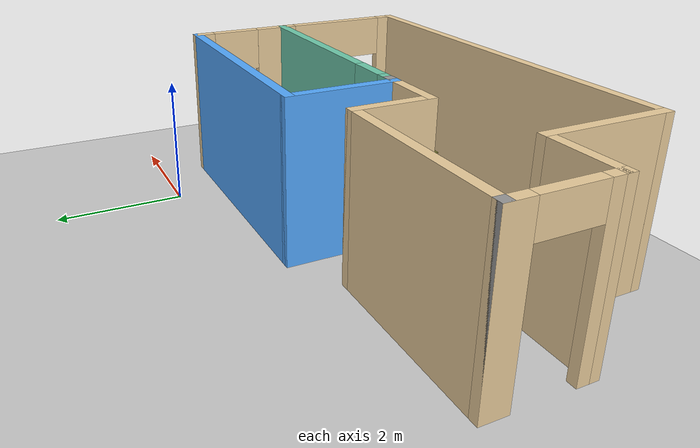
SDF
<sdf version="1.6">
 <world name="default">
  <model name="ground_plane">
   <static>1</static>
   <link name="link">
    <collision name="collision">
     <geometry><plane><normal>0 0 1</normal><size>100 100</size></plane></geometry>
     <surface>
      <contact><collide_bitmask>65535</collide_bitmask></contact>
      <friction><ode><mu>100</mu><mu2>50</mu2></ode></friction>
     </surface>
    </collision>
    <visual name="visual">
     <cast_shadows>0</cast_shadows>
     <geometry><plane><normal>0 0 1</normal><size>100 100</size></plane></geometry>
     <material>
      <script><uri>file://media/materials/scripts/gazebo.material</uri><name>Gazebo/Grey</name></script>
     </material>
    </visual>
   </link>
  </model>
  <model name="my_building">
   <pose>-2.675 -2.715 0 0 -0 0</pose>
   <link name="Wall_0">
    <collision name="Wall_0_Collision">
     <geometry><box><size>2.75 0.15 2.5</size></box></geometry>
     <pose>0 0 1.25 0 -0 0</pose>
    </collision>
    <visual name="Wall_0_Visual">
     <pose>0 0 1.25 0 -0 0</pose>
     <geometry><box><size>2.75 0.15 2.5</size></box></geometry>
     <material>
      <script><uri>file://media/materials/scripts/gazebo.material</uri><name>Gazebo/Grey</name></script>
      <ambient>0.921569 0.807843 0.615686 1</ambient>
     </material>
     <meta><layer>0</layer></meta>
    </visual>
    <pose>-2.275 1.425 0 0 -0 0</pose>
   </link>
   <link name="Wall_1">
    <collision name="Wall_1_Collision">
     <geometry><box><size>1.25 0.15 2.5</size></box></geometry>
     <pose>0 0 1.25 0 -0 0</pose>
    </collision>
    <visual name="Wall_1_Visual">
     <pose>0 0 1.25 0 -0 0</pose>
     <geometry><box><size>1.25 0.15 2.5</size></box></geometry>
     <material>
      <script><uri>file://media/materials/scripts/gazebo.material</uri><name>Gazebo/Grey</name></script>
      <ambient>0.921569 0.807843 0.615686 1</ambient>
     </material>
     <meta><layer>0</layer></meta>
    </visual>
    <pose>-0.975 0.875 0 0 0 -1.5708</pose>
   </link>
   <link name="Wall_10">
    <collision name="Wall_10_Collision">
     <geometry><box><size>0.15 0.15 2.5</size></box></geometry>
     <pose>0 0 1.25 0 -0 0</pose>
    </collision>
    <visual name="Wall_10_Visual">
     <pose>0 0 1.25 0 -0 0</pose>
     <geometry><box><size>0.15 0.15 2.5</size></box></geometry>
     <material>
      <script><uri>file://media/materials/scripts/gazebo.material</uri><name>Gazebo/Grey</name></script>
      <ambient>1 1 1 1</ambient>
     </material>
     <meta><layer>0</layer></meta>
    </visual>
    <pose>-3.725 1.425 0 0 -0 0</pose>
   </link>
   <link name="Wall_12">
    <pose>-3.725 0.675 0 0 -0 1.5708</pose>
    <visual name="Wall_12_Visual_0">
     <pose>-0.658151 0 1.25 0 -0 0</pose>
     <geometry><box><size>0.333697 0.15 2.5</size></box></geometry>
     <material>
      <script><uri>file://media/materials/scripts/gazebo.material</uri><name>Gazebo/Grey</name></script>
      <ambient>0.921569 0.807843 0.615686 1</ambient>
     </material>
     <meta><layer>0</layer></meta>
    </visual>
    <collision name="Wall_12_Collision_0">
     <geometry><box><size>0.333697 0.15 2.5</size></box></geometry>
     <pose>-0.658151 0 1.25 0 -0 0</pose>
    </collision>
    <visual name="Wall_12_Visual_1">
     <pose>0.616849 0 1.25 0 -0 0</pose>
     <geometry><box><size>0.416303 0.15 2.5</size></box></geometry>
     <material>
      <script><uri>file://media/materials/scripts/gazebo.material</uri><name>Gazebo/Grey</name></script>
      <ambient>0.921569 0.807843 0.615686 1</ambient>
     </material>
     <meta><layer>0</layer></meta>
    </visual>
    <collision name="Wall_12_Collision_1">
     <geometry><box><size>0.416303 0.15 2.5</size></box></geometry>
     <pose>0.616849 0 1.25 0 -0 0</pose>
    </collision>
    <visual name="Wall_12_Visual_2">
     <pose>-0.041303 0 2.25 0 -0 0</pose>
     <geometry><box><size>0.9 0.15 0.5</size></box></geometry>
     <material>
      <script><uri>file://media/materials/scripts/gazebo.material</uri><name>Gazebo/Grey</name></script>
      <ambient>0.921569 0.807843 0.615686 1</ambient>
     </material>
     <meta><layer>0</layer></meta>
    </visual>
    <collision name="Wall_12_Collision_2">
     <geometry><box><size>0.9 0.15 0.5</size></box></geometry>
     <pose>-0.041303 0 2.25 0 -0 0</pose>
    </collision>
   </link>
   <link name="Wall_14">
    <pose>1.854 0.325 0 0 -0 3.14159</pose>
    <visual name="Wall_14_Visual_0">
     <pose>-0.465286 0 1.25 0 -0 0</pose>
     <geometry><box><size>2.91943 0.15 2.5</size></box></geometry>
     <material>
      <script><uri>file://media/materials/scripts/gazebo.material</uri><name>Gazebo/Grey</name></script>
      <ambient>0.435294 0.796078 0.67451 1</ambient>
     </material>
     <meta><layer>0</layer></meta>
    </visual>
    <collision name="Wall_14_Collision_0">
     <geometry><box><size>2.91943 0.15 2.5</size></box></geometry>
     <pose>-0.465286 0 1.25 0 -0 0</pose>
    </collision>
    <visual name="Wall_14_Visual_1">
     <pose>1.78401 0 1.25 0 -0 0</pose>
     <geometry><box><size>0.281969 0.15 2.5</size></box></geometry>
     <material>
      <script><uri>file://media/materials/scripts/gazebo.material</uri><name>Gazebo/Grey</name></script>
      <ambient>0.435294 0.796078 0.67451 1</ambient>
     </material>
     <meta><layer>0</layer></meta>
    </visual>
    <collision name="Wall_14_Collision_1">
     <geometry><box><size>0.281969 0.15 2.5</size></box></geometry>
     <pose>1.78401 0 1.25 0 -0 0</pose>
    </collision>
    <visual name="Wall_14_Visual_2">
     <pose>1.31873 0 2.25 0 -0 0</pose>
     <geometry><box><size>0.648602 0.15 0.5</size></box></geometry>
     <material>
      <script><uri>file://media/materials/scripts/gazebo.material</uri><name>Gazebo/Grey</name></script>
      <ambient>0.435294 0.796078 0.67451 1</ambient>
     </material>
     <meta><layer>0</layer></meta>
    </visual>
    <collision name="Wall_14_Collision_2">
     <geometry><box><size>0.648602 0.15 0.5</size></box></geometry>
     <pose>1.31873 0 2.25 0 -0 0</pose>
    </collision>
   </link>
   <link name="Wall_15">
    <collision name="Wall_15_Collision">
     <geometry><box><size>0.15 0.15 2.5</size></box></geometry>
     <pose>0 0 1.25 0 -0 0</pose>
    </collision>
    <visual name="Wall_15_Visual">
     <pose>0 0 1.25 0 -0 0</pose>
     <geometry><box><size>0.15 0.15 2.5</size></box></geometry>
     <material>
      <script><uri>file://media/materials/scripts/gazebo.material</uri><name>Gazebo/Grey</name></script>
      <ambient>1 1 1 1</ambient>
     </material>
     <meta><layer>0</layer></meta>
    </visual>
    <pose>0.004 0.325 0 0 -0 0</pose>
   </link>
   <link name="Wall_16">
    <collision name="Wall_16_Collision">
     <geometry><box><size>0.15 0.15 2.5</size></box></geometry>
     <pose>0 0 1.25 0 -0 0</pose>
    </collision>
    <visual name="Wall_16_Visual">
     <pose>0 0 1.25 0 -0 0</pose>
     <geometry><box><size>0.15 0.15 2.5</size></box></geometry>
     <material>
      <script><uri>file://media/materials/scripts/gazebo.material</uri><name>Gazebo/Grey</name></script>
      <ambient>1 1 1 1</ambient>
     </material>
     <meta><layer>0</layer></meta>
    </visual>
    <pose>0.004 0.325 0 0 -0 0</pose>
   </link>
   <link name="Wall_2">
    <collision name="Wall_2_Collision">
     <geometry><box><size>1 0.15 2.5</size></box></geometry>
     <pose>0 0 1.25 0 -0 0</pose>
    </collision>
    <visual name="Wall_2_Visual">
     <pose>0 0 1.25 0 -0 0</pose>
     <geometry><box><size>1 0.15 2.5</size></box></geometry>
     <material>
      <script><uri>file://media/materials/scripts/gazebo.material</uri><name>Gazebo/Grey</name></script>
      <ambient>0.921569 0.807843 0.615686 1</ambient>
     </material>
     <meta><layer>0</layer></meta>
    </visual>
    <pose>-0.55 0.325 0 0 -0 0</pose>
   </link>
   <link name="Wall_3">
    <collision name="Wall_3_Collision">
     <geometry><box><size>1.75 0.15 2.5</size></box></geometry>
     <pose>0 0 1.25 0 -0 0</pose>
    </collision>
    <visual name="Wall_3_Visual">
     <pose>0 0 1.25 0 -0 0</pose>
     <geometry><box><size>1.75 0.15 2.5</size></box></geometry>
     <material>
      <script><uri>file://media/materials/scripts/gazebo.material</uri><name>Gazebo/Grey</name></script>
      <ambient>0.333333 0.666667 1 1</ambient>
     </material>
     <meta><layer>0</layer></meta>
    </visual>
    <pose>-0.125 1.125 0 0 -0 1.5708</pose>
   </link>
   <link name="Wall_4">
    <collision name="Wall_4_Collision">
     <geometry><box><size>4 0.15 2.5</size></box></geometry>
     <pose>0 0 1.25 0 -0 0</pose>
    </collision>
    <visual name="Wall_4_Visual">
     <pose>0 0 1.25 0 -0 0</pose>
     <geometry><box><size>4 0.15 2.5</size></box></geometry>
     <material>
      <script><uri>file://media/materials/scripts/gazebo.material</uri><name>Gazebo/Grey</name></script>
      <ambient>0.333333 0.666667 1 1</ambient>
     </material>
     <meta><layer>0</layer></meta>
    </visual>
    <pose>1.8 1.925 0 0 -0 0</pose>
   </link>
   <link name="Wall_5">
    <pose>3.725 0 0 0 0 -1.5708</pose>
    <visual name="Wall_5_Visual_0">
     <pose>-1.82257 0 1.25 0 -0 0</pose>
     <geometry><box><size>0.354865 0.15 2.5</size></box></geometry>
     <material>
      <script><uri>file://media/materials/scripts/gazebo.material</uri><name>Gazebo/Grey</name></script>
      <ambient>0.921569 0.807843 0.615686 1</ambient>
     </material>
     <meta><layer>0</layer></meta>
    </visual>
    <collision name="Wall_5_Collision_0">
     <geometry><box><size>0.354865 0.15 2.5</size></box></geometry>
     <pose>-1.82257 0 1.25 0 -0 0</pose>
    </collision>
    <visual name="Wall_5_Visual_1">
     <pose>0.177432 0 0.5 0 -0 0</pose>
     <geometry><box><size>3.64513 0.15 1</size></box></geometry>
     <material>
      <script><uri>file://media/materials/scripts/gazebo.material</uri><name>Gazebo/Grey</name></script>
      <ambient>0.921569 0.807843 0.615686 1</ambient>
     </material>
     <meta><layer>0</layer></meta>
    </visual>
    <collision name="Wall_5_Collision_1">
     <geometry><box><size>3.64513 0.15 1</size></box></geometry>
     <pose>0.177432 0 0.5 0 -0 0</pose>
    </collision>
    <visual name="Wall_5_Visual_2">
     <pose>-0.473451 0 1.75 0 -0 0</pose>
     <geometry><box><size>0.743368 0.15 1.5</size></box></geometry>
     <material>
      <script><uri>file://media/materials/scripts/gazebo.material</uri><name>Gazebo/Grey</name></script>
      <ambient>0.921569 0.807843 0.615686 1</ambient>
     </material>
     <meta><layer>0</layer></meta>
    </visual>
    <collision name="Wall_5_Collision_2">
     <geometry><box><size>0.743368 0.15 1.5</size></box></geometry>
     <pose>-0.473451 0 1.75 0 -0 0</pose>
    </collision>
    <visual name="Wall_5_Visual_3">
     <pose>1.81412 0 1.75 0 -0 0</pose>
     <geometry><box><size>0.371767 0.15 1.5</size></box></geometry>
     <material>
      <script><uri>file://media/materials/scripts/gazebo.material</uri><name>Gazebo/Grey</name></script>
      <ambient>0.921569 0.807843 0.615686 1</ambient>
     </material>
     <meta><layer>0</layer></meta>
    </visual>
    <collision name="Wall_5_Collision_3">
     <geometry><box><size>0.371767 0.15 1.5</size></box></geometry>
     <pose>1.81412 0 1.75 0 -0 0</pose>
    </collision>
    <visual name="Wall_5_Visual_4">
     <pose>-1.24514 0 2.15 0 -0 0</pose>
     <geometry><box><size>0.8 0.15 0.7</size></box></geometry>
     <material>
      <script><uri>file://media/materials/scripts/gazebo.material</uri><name>Gazebo/Grey</name></script>
      <ambient>0.921569 0.807843 0.615686 1</ambient>
     </material>
     <meta><layer>0</layer></meta>
    </visual>
    <collision name="Wall_5_Collision_4">
     <geometry><box><size>0.8 0.15 0.7</size></box></geometry>
     <pose>-1.24514 0 2.15 0 -0 0</pose>
    </collision>
    <visual name="Wall_5_Visual_5">
     <pose>0.763233 0 2.15 0 -0 0</pose>
     <geometry><box><size>1.73 0.15 0.7</size></box></geometry>
     <material>
      <script><uri>file://media/materials/scripts/gazebo.material</uri><name>Gazebo/Grey</name></script>
      <ambient>0.921569 0.807843 0.615686 1</ambient>
     </material>
     <meta><layer>0</layer></meta>
    </visual>
    <collision name="Wall_5_Collision_5">
     <geometry><box><size>1.73 0.15 0.7</size></box></geometry>
     <pose>0.763233 0 2.15 0 -0 0</pose>
    </collision>
   </link>
   <link name="Wall_6">
    <collision name="Wall_6_Collision">
     <geometry><box><size>6.5 0.15 2.5</size></box></geometry>
     <pose>0 0 1.25 0 -0 0</pose>
    </collision>
    <visual name="Wall_6_Visual">
     <pose>0 0 1.25 0 -0 0</pose>
     <geometry><box><size>6.5 0.15 2.5</size></box></geometry>
     <material>
      <script><uri>file://media/materials/scripts/gazebo.material</uri><name>Gazebo/Grey</name></script>
      <ambient>0.921569 0.807843 0.615686 1</ambient>
     </material>
     <meta><layer>0</layer></meta>
    </visual>
    <pose>0.55 -1.925 0 0 -0 3.14159</pose>
   </link>
   <link name="Wall_7">
    <collision name="Wall_7_Collision">
     <geometry><box><size>2 0.15 2.5</size></box></geometry>
     <pose>0 0 1.25 0 -0 0</pose>
    </collision>
    <visual name="Wall_7_Visual">
     <pose>0 0 1.25 0 -0 0</pose>
     <geometry><box><size>2 0.15 2.5</size></box></geometry>
     <material>
      <script><uri>file://media/materials/scripts/gazebo.material</uri><name>Gazebo/Grey</name></script>
      <ambient>0.921569 0.807843 0.615686 1</ambient>
     </material>
     <meta><layer>0</layer></meta>
    </visual>
    <pose>-2.625 -1 0 0 -0 1.5708</pose>
   </link>
   <link name="Wall_8">
    <collision name="Wall_8_Collision">
     <geometry><box><size>1.25 0.15 2.5</size></box></geometry>
     <pose>0 0 1.25 0 -0 0</pose>
    </collision>
    <visual name="Wall_8_Visual">
     <pose>0 0 1.25 0 -0 0</pose>
     <geometry><box><size>1.25 0.15 2.5</size></box></geometry>
     <material>
      <script><uri>file://media/materials/scripts/gazebo.material</uri><name>Gazebo/Grey</name></script>
      <ambient>0.921569 0.807843 0.615686 1</ambient>
     </material>
     <meta><layer>0</layer></meta>
    </visual>
    <pose>-3.175 -0.075 0 0 -0 3.14159</pose>
   </link>
   <static>1</static>
  </model>
  <model name="my_table_clone_0">
   <link name="link_0">
    <pose>0.072072 -4.79324 0.208333 0 -0 0</pose>
    <inertial>
     <mass>1</mass>
     <inertia>
      <ixx>0.166667</ixx>
      <ixy>0</ixy>
      <ixz>0</ixz>
      <iyy>0.166667</iyy>
      <iyz>0</iyz>
      <izz>0.166667</izz>
     </inertia>
    </inertial>
    <visual name="visual">
     <geometry><box><size>0.5 0.75 0.02</size></box></geometry>
     <material>
      <lighting>1</lighting>
      <script><uri>file://media/materials/scripts/gazebo.material</uri><name>Gazebo/Grey</name></script>
      <shader type="pixel"><normal_map>__default__</normal_map></shader>
      <ambient>0.5 0.5 0.2 1</ambient>
      <diffuse>0.5 0.5 0.2 1</diffuse>
      <specular>0.01 0.01 0.01 1</specular>
      <emissive>0 0 0 1</emissive>
     </material>
    </visual>
    <collision name="collision">
     <geometry><box><size>0.5 0.75 0.02</size></box></geometry>
     <surface>
      <friction>
       <ode><mu>1</mu><mu2>1</mu2><fdir1>0 0 0</fdir1><slip1>0</slip1><slip2>0</slip2></ode>
       <torsional>
        <coefficient>1</coefficient>
        <patch_radius>0</patch_radius>
        <surface_radius>0</surface_radius>
        <use_patch_radius>1</use_patch_radius>
        <ode><slip>0</slip></ode>
       </torsional>
      </friction>
      <bounce><restitution_coefficient>0</restitution_coefficient><threshold>1e+06</threshold></bounce>
      <contact>
       <collide_without_contact>0</collide_without_contact>
       <collide_without_contact_bitmask>1</collide_without_contact_bitmask>
       <collide_bitmask>1</collide_bitmask>
       <ode>
        <soft_cfm>0</soft_cfm>
        <soft_erp>0.2</soft_erp>
        <kp>1e+13</kp>
        <kd>1</kd>
        <max_vel>0.01</max_vel>
        <min_depth>0</min_depth>
       </ode>
       <bullet>
        <split_impulse>1</split_impulse>
        <split_impulse_penetration_threshold>-0.01</split_impulse_penetration_threshold>
        <soft_cfm>0</soft_cfm>
        <soft_erp>0.2</soft_erp>
        <kp>1e+13</kp>
        <kd>1</kd>
       </bullet>
      </contact>
     </surface>
    </collision>
   </link>
   <link name="link_0_clone">
    <pose>0.272072 -4.49324 -0.041667 0 -0 0</pose>
    <inertial>
     <mass>1</mass>
     <inertia>
      <ixx>0.166667</ixx>
      <ixy>0</ixy>
      <ixz>0</ixz>
      <iyy>0.166667</iyy>
      <iyz>0</iyz>
      <izz>0.166667</izz>
     </inertia>
    </inertial>
    <visual name="visual">
     <geometry><box><size>0.05 0.05 0.49</size></box></geometry>
     <material>
      <lighting>1</lighting>
      <script><uri>file://media/materials/scripts/gazebo.material</uri><name>Gazebo/Grey</name></script>
      <shader type="pixel"><normal_map>__default__</normal_map></shader>
      <ambient>0.5 0.5 0.2 1</ambient>
      <diffuse>0.5 0.5 0.2 1</diffuse>
      <specular>0.01 0.01 0.01 1</specular>
      <emissive>0 0 0 1</emissive>
     </material>
    </visual>
    <collision name="collision">
     <geometry><box><size>0.05 0.05 0.49</size></box></geometry>
     <surface>
      <friction>
       <ode><mu>1</mu><mu2>1</mu2><fdir1>0 0 0</fdir1><slip1>0</slip1><slip2>0</slip2></ode>
       <torsional>
        <coefficient>1</coefficient>
        <patch_radius>0</patch_radius>
        <surface_radius>0</surface_radius>
        <use_patch_radius>1</use_patch_radius>
        <ode><slip>0</slip></ode>
       </torsional>
      </friction>
      <bounce><restitution_coefficient>0</restitution_coefficient><threshold>1e+06</threshold></bounce>
      <contact>
       <collide_without_contact>0</collide_without_contact>
       <collide_without_contact_bitmask>1</collide_without_contact_bitmask>
       <collide_bitmask>1</collide_bitmask>
       <ode>
        <soft_cfm>0</soft_cfm>
        <soft_erp>0.2</soft_erp>
        <kp>1e+13</kp>
        <kd>1</kd>
        <max_vel>0.01</max_vel>
        <min_depth>0</min_depth>
       </ode>
       <bullet>
        <split_impulse>1</split_impulse>
        <split_impulse_penetration_threshold>-0.01</split_impulse_penetration_threshold>
        <soft_cfm>0</soft_cfm>
        <soft_erp>0.2</soft_erp>
        <kp>1e+13</kp>
        <kd>1</kd>
       </bullet>
      </contact>
     </surface>
    </collision>
   </link>
   <link name="link_0_clone_clone_0">
    <pose>-0.127928 -4.49324 -0.041667 0 -0 0</pose>
    <inertial>
     <mass>1</mass>
     <inertia>
      <ixx>0.166667</ixx>
      <ixy>0</ixy>
      <ixz>0</ixz>
      <iyy>0.166667</iyy>
      <iyz>0</iyz>
      <izz>0.166667</izz>
     </inertia>
    </inertial>
    <visual name="visual">
     <geometry><box><size>0.05 0.05 0.49</size></box></geometry>
     <material>
      <lighting>1</lighting>
      <script><uri>file://media/materials/scripts/gazebo.material</uri><name>Gazebo/Grey</name></script>
      <shader type="pixel"><normal_map>__default__</normal_map></shader>
      <ambient>0.5 0.5 0.2 1</ambient>
      <diffuse>0.5 0.5 0.2 1</diffuse>
      <specular>0.01 0.01 0.01 1</specular>
      <emissive>0 0 0 1</emissive>
     </material>
    </visual>
    <collision name="collision">
     <geometry><box><size>0.05 0.05 0.49</size></box></geometry>
     <surface>
      <friction>
       <ode><mu>1</mu><mu2>1</mu2><fdir1>0 0 0</fdir1><slip1>0</slip1><slip2>0</slip2></ode>
       <torsional>
        <coefficient>1</coefficient>
        <patch_radius>0</patch_radius>
        <surface_radius>0</surface_radius>
        <use_patch_radius>1</use_patch_radius>
        <ode><slip>0</slip></ode>
       </torsional>
      </friction>
      <bounce><restitution_coefficient>0</restitution_coefficient><threshold>1e+06</threshold></bounce>
      <contact>
       <collide_without_contact>0</collide_without_contact>
       <collide_without_contact_bitmask>1</collide_without_contact_bitmask>
       <collide_bitmask>1</collide_bitmask>
       <ode>
        <soft_cfm>0</soft_cfm>
        <soft_erp>0.2</soft_erp>
        <kp>1e+13</kp>
        <kd>1</kd>
        <max_vel>0.01</max_vel>
        <min_depth>0</min_depth>
       </ode>
       <bullet>
        <split_impulse>1</split_impulse>
        <split_impulse_penetration_threshold>-0.01</split_impulse_penetration_threshold>
        <soft_cfm>0</soft_cfm>
        <soft_erp>0.2</soft_erp>
        <kp>1e+13</kp>
        <kd>1</kd>
       </bullet>
      </contact>
     </surface>
    </collision>
   </link>
   <link name="link_0_clone_clone_1">
    <pose>0.272072 -5.09324 -0.041667 0 -0 0</pose>
    <inertial>
     <mass>1</mass>
     <inertia>
      <ixx>0.166667</ixx>
      <ixy>0</ixy>
      <ixz>0</ixz>
      <iyy>0.166667</iyy>
      <iyz>0</iyz>
      <izz>0.166667</izz>
     </inertia>
    </inertial>
    <visual name="visual">
     <geometry><box><size>0.05 0.05 0.49</size></box></geometry>
     <material>
      <lighting>1</lighting>
      <script><uri>file://media/materials/scripts/gazebo.material</uri><name>Gazebo/Grey</name></script>
      <shader type="pixel"><normal_map>__default__</normal_map></shader>
      <ambient>0.5 0.5 0.2 1</ambient>
      <diffuse>0.5 0.5 0.2 1</diffuse>
      <specular>0.01 0.01 0.01 1</specular>
      <emissive>0 0 0 1</emissive>
     </material>
    </visual>
    <collision name="collision">
     <geometry><box><size>0.05 0.05 0.49</size></box></geometry>
     <surface>
      <friction>
       <ode><mu>1</mu><mu2>1</mu2><fdir1>0 0 0</fdir1><slip1>0</slip1><slip2>0</slip2></ode>
       <torsional>
        <coefficient>1</coefficient>
        <patch_radius>0</patch_radius>
        <surface_radius>0</surface_radius>
        <use_patch_radius>1</use_patch_radius>
        <ode><slip>0</slip></ode>
       </torsional>
      </friction>
      <bounce><restitution_coefficient>0</restitution_coefficient><threshold>1e+06</threshold></bounce>
      <contact>
       <collide_without_contact>0</collide_without_contact>
       <collide_without_contact_bitmask>1</collide_without_contact_bitmask>
       <collide_bitmask>1</collide_bitmask>
       <ode>
        <soft_cfm>0</soft_cfm>
        <soft_erp>0.2</soft_erp>
        <kp>1e+13</kp>
        <kd>1</kd>
        <max_vel>0.01</max_vel>
        <min_depth>0</min_depth>
       </ode>
       <bullet>
        <split_impulse>1</split_impulse>
        <split_impulse_penetration_threshold>-0.01</split_impulse_penetration_threshold>
        <soft_cfm>0</soft_cfm>
        <soft_erp>0.2</soft_erp>
        <kp>1e+13</kp>
        <kd>1</kd>
       </bullet>
      </contact>
     </surface>
    </collision>
   </link>
   <link name="link_0_clone_clone_2">
    <pose>-0.127928 -5.09324 -0.041667 0 -0 0</pose>
    <inertial>
     <mass>1</mass>
     <inertia>
      <ixx>0.166667</ixx>
      <ixy>0</ixy>
      <ixz>0</ixz>
      <iyy>0.166667</iyy>
      <iyz>0</iyz>
      <izz>0.166667</izz>
     </inertia>
    </inertial>
    <visual name="visual">
     <geometry><box><size>0.05 0.05 0.49</size></box></geometry>
     <material>
      <lighting>1</lighting>
      <script><uri>file://media/materials/scripts/gazebo.material</uri><name>Gazebo/Grey</name></script>
      <shader type="pixel"><normal_map>__default__</normal_map></shader>
      <ambient>0.5 0.5 0.2 1</ambient>
      <diffuse>0.5 0.5 0.2 1</diffuse>
      <specular>0.01 0.01 0.01 1</specular>
      <emissive>0 0 0 1</emissive>
     </material>
    </visual>
    <collision name="collision">
     <geometry><box><size>0.05 0.05 0.49</size></box></geometry>
     <surface>
      <friction>
       <ode><mu>1</mu><mu2>1</mu2><fdir1>0 0 0</fdir1><slip1>0</slip1><slip2>0</slip2></ode>
       <torsional>
        <coefficient>1</coefficient>
        <patch_radius>0</patch_radius>
        <surface_radius>0</surface_radius>
        <use_patch_radius>1</use_patch_radius>
        <ode><slip>0</slip></ode>
       </torsional>
      </friction>
      <bounce><restitution_coefficient>0</restitution_coefficient><threshold>1e+06</threshold></bounce>
      <contact>
       <collide_without_contact>0</collide_without_contact>
       <collide_without_contact_bitmask>1</collide_without_contact_bitmask>
       <collide_bitmask>1</collide_bitmask>
       <ode>
        <soft_cfm>0</soft_cfm>
        <soft_erp>0.2</soft_erp>
        <kp>1e+13</kp>
        <kd>1</kd>
        <max_vel>0.01</max_vel>
        <min_depth>0</min_depth>
       </ode>
       <bullet>
        <split_impulse>1</split_impulse>
        <split_impulse_penetration_threshold>-0.01</split_impulse_penetration_threshold>
        <soft_cfm>0</soft_cfm>
        <soft_erp>0.2</soft_erp>
        <kp>1e+13</kp>
        <kd>1</kd>
       </bullet>
      </contact>
     </surface>
    </collision>
   </link>
   <joint name="link_0_JOINT_4" type="fixed">
    <parent>link_0</parent>
    <child>link_0_clone</child>
    <physics>
     <ode><limit><cfm>0</cfm><erp>0.2</erp></limit><suspension><cfm>0</cfm><erp>0.2</erp></suspension></ode>
    </physics>
   </joint>
   <joint name="link_0_JOINT_5" type="fixed">
    <parent>link_0</parent>
    <child>link_0_clone_clone_0</child>
    <physics>
     <ode><limit><cfm>0</cfm><erp>0.2</erp></limit><suspension><cfm>0</cfm><erp>0.2</erp></suspension></ode>
    </physics>
   </joint>
   <joint name="link_0_JOINT_6" type="fixed">
    <parent>link_0</parent>
    <child>link_0_clone_clone_1</child>
    <physics>
     <ode><limit><cfm>0</cfm><erp>0.2</erp></limit><suspension><cfm>0</cfm><erp>0.2</erp></suspension></ode>
    </physics>
   </joint>
   <joint name="link_0_JOINT_7" type="fixed">
    <parent>link_0</parent>
    <child>link_0_clone_clone_2</child>
    <physics>
     <ode><limit><cfm>0</cfm><erp>0.2</erp></limit><suspension><cfm>0</cfm><erp>0.2</erp></suspension></ode>
    </physics>
   </joint>
   <static>0</static>
   <pose>-1.05268 0.791547 0.286667 0 2e-06 0.001006</pose>
  </model>
  <model name="bookshelf">
   <static>1</static>
   <link name="link">
    <inertial><mass>1</mass></inertial>
    <collision name="back">
     <pose>0 0.005 0.6 0 -0 0</pose>
     <geometry><box><size>0.9 0.01 1.2</size></box></geometry>
    </collision>
    <visual name="visual1">
     <pose>0 0.005 0.6 0 -0 0</pose>
     <geometry><box><size>0.9 0.01 1.2</size></box></geometry>
     <material>
      <script><uri>file://media/materials/scripts/gazebo.material</uri><name>Gazebo/Wood</name></script>
     </material>
    </visual>
    <collision name="left_side">
     <pose>0.45 -0.195 0.6 0 -0 0</pose>
     <geometry><box><size>0.02 0.4 1.2</size></box></geometry>
    </collision>
    <visual name="visual2">
     <pose>0.45 -0.195 0.6 0 -0 0</pose>
     <geometry><box><size>0.02 0.4 1.2</size></box></geometry>
     <material>
      <script><uri>file://media/materials/scripts/gazebo.material</uri><name>Gazebo/Wood</name></script>
     </material>
    </visual>
    <collision name="right_side">
     <pose>-0.45 -0.195 0.6 0 -0 0</pose>
     <geometry><box><size>0.02 0.4 1.2</size></box></geometry>
    </collision>
    <visual name="visual3">
     <pose>-0.45 -0.195 0.6 0 -0 0</pose>
     <geometry><box><size>0.02 0.4 1.2</size></box></geometry>
     <material>
      <script><uri>file://media/materials/scripts/gazebo.material</uri><name>Gazebo/Wood</name></script>
     </material>
    </visual>
    <collision name="bottom">
     <pose>0 -0.195 0.03 0 -0 0</pose>
     <geometry><box><size>0.88 0.4 0.06</size></box></geometry>
    </collision>
    <visual name="visual4">
     <pose>0 -0.195 0.03 0 -0 0</pose>
     <geometry><box><size>0.88 0.4 0.06</size></box></geometry>
     <material>
      <script><uri>file://media/materials/scripts/gazebo.material</uri><name>Gazebo/Wood</name></script>
     </material>
    </visual>
    <collision name="top">
     <pose>0 -0.195 1.19 0 -0 0</pose>
     <geometry><box><size>0.88 0.4 0.02</size></box></geometry>
    </collision>
    <visual name="visual5">
     <pose>0 -0.195 1.19 0 -0 0</pose>
     <geometry><box><size>0.88 0.4 0.02</size></box></geometry>
     <material>
      <script><uri>file://media/materials/scripts/gazebo.material</uri><name>Gazebo/Wood</name></script>
     </material>
    </visual>
    <collision name="low_shelf">
     <pose>0 -0.195 0.43 0 -0 0</pose>
     <geometry><box><size>0.88 0.4 0.02</size></box></geometry>
    </collision>
    <visual name="visual6">
     <pose>0 -0.195 0.43 0 -0 0</pose>
     <geometry><box><size>0.88 0.4 0.02</size></box></geometry>
     <material>
      <script><uri>file://media/materials/scripts/gazebo.material</uri><name>Gazebo/Wood</name></script>
     </material>
    </visual>
    <collision name="high_shelf">
     <pose>0 -0.195 0.8 0 -0 0</pose>
     <geometry><box><size>0.88 0.4 0.02</size></box></geometry>
    </collision>
    <visual name="visual7">
     <pose>0 -0.195 0.8 0 -0 0</pose>
     <geometry><box><size>0.88 0.4 0.02</size></box></geometry>
     <material>
      <script><uri>file://media/materials/scripts/gazebo.material</uri><name>Gazebo/Wood</name></script>
     </material>
    </visual>
   </link>
   <pose>-2.13576 -0.982877 0 0 -0 0</pose>
  </model>
 </world>
</sdf>
